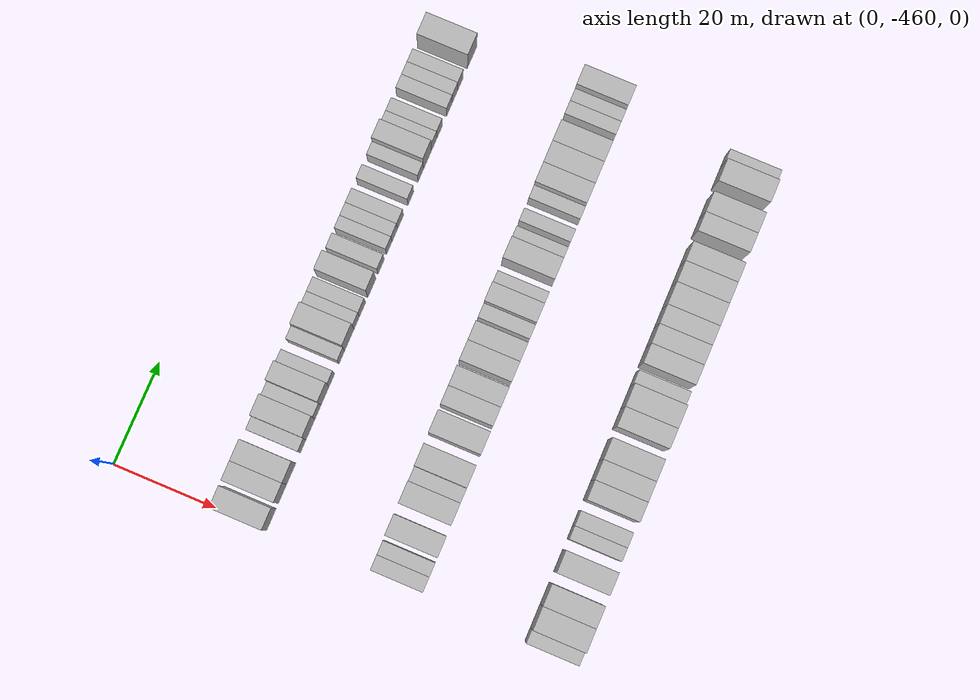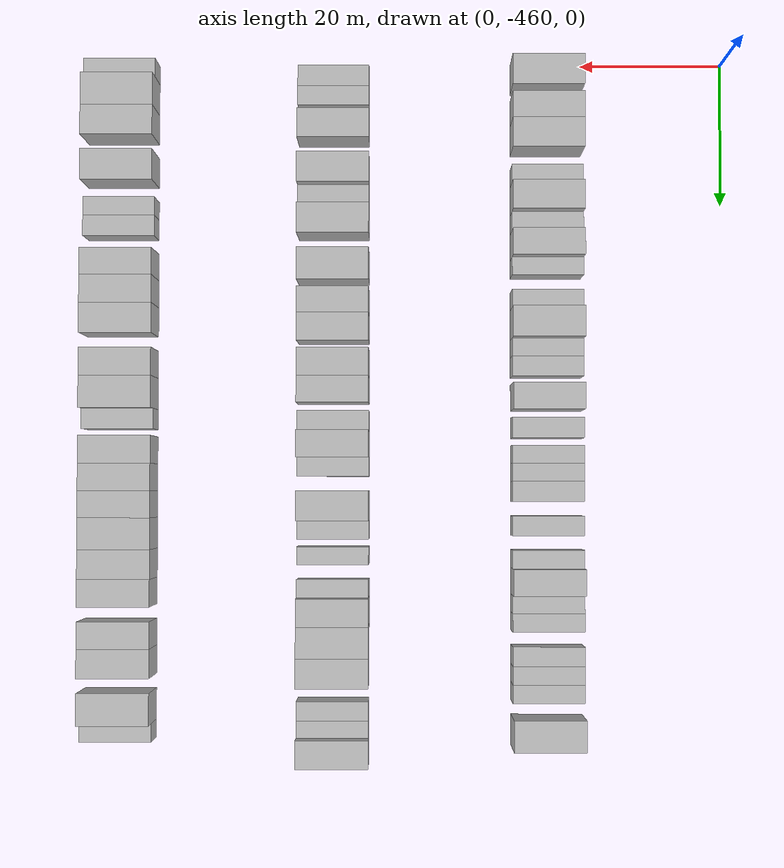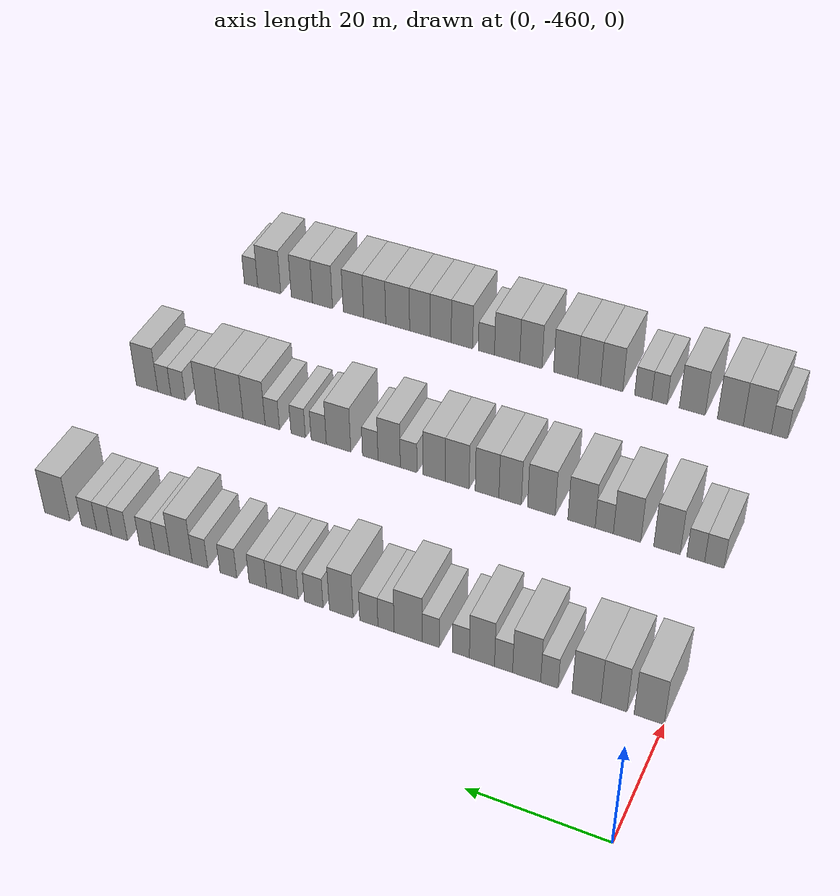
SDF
<sdf version="1.6">
 <world name="default">
  <model name="building_1">
   <static>1</static>
   <pose>25.0000 -457.9038 0 0.000000 0.000000 0.000000</pose>
   <link name="link">
    <pose>0 0 4.50 0 0 0</pose>
    <collision name="collision"><geometry><box><size>10.0000 4.1924 9.0000</size></box></geometry></collision>
    <visual name="visual">
     <cast_shadows>0</cast_shadows>
     <geometry><box><size>10.0000 4.1924 9.0000</size></box></geometry>
     <material>
      <script>
       <uri>model://HANNAS_wall/materials/scripts</uri>
       <uri>model://HANNAS_wall/materials/textures</uri>
       <name>vrc/HANNAS_wall</name>
      </script>
     </material>
    </visual>
   </link>
  </model>
  <model name="building_2">
   <static>1</static>
   <pose>25.0000 -452.9609 0 0.000000 0.000000 0.000000</pose>
   <link name="link">
    <pose>0 0 4.50 0 0 0</pose>
    <collision name="collision"><geometry><box><size>10.0000 3.6936 9.0000</size></box></geometry></collision>
    <visual name="visual">
     <cast_shadows>0</cast_shadows>
     <geometry><box><size>10.0000 3.6936 9.0000</size></box></geometry>
     <material>
      <script>
       <uri>model://HANNAS_wall/materials/scripts</uri>
       <uri>model://HANNAS_wall/materials/textures</uri>
       <name>vrc/HANNAS_wall</name>
      </script>
     </material>
    </visual>
   </link>
  </model>
  <model name="building_3">
   <static>1</static>
   <pose>25.0000 -449.0619 0 0.000000 0.000000 0.000000</pose>
   <link name="link">
    <pose>0 0 4.50 0 0 0</pose>
    <collision name="collision"><geometry><box><size>10.0000 4.1043 9.0000</size></box></geometry></collision>
    <visual name="visual">
     <cast_shadows>0</cast_shadows>
     <geometry><box><size>10.0000 4.1043 9.0000</size></box></geometry>
     <material>
      <script>
       <uri>model://HANNAS_wall/materials/scripts</uri>
       <uri>model://HANNAS_wall/materials/textures</uri>
       <name>vrc/HANNAS_wall</name>
      </script>
     </material>
    </visual>
   </link>
  </model>
  <model name="building_4">
   <static>1</static>
   <pose>25.0000 -443.7452 0 0.000000 0.000000 0.000000</pose>
   <link name="link">
    <pose>0 0 3.00 0 0 0</pose>
    <collision name="collision"><geometry><box><size>10.0000 2.5291 6.0000</size></box></geometry></collision>
    <visual name="visual">
     <cast_shadows>0</cast_shadows>
     <geometry><box><size>10.0000 2.5291 6.0000</size></box></geometry>
     <material>
      <script>
       <uri>model://HANNAS_wall/materials/scripts</uri>
       <uri>model://HANNAS_wall/materials/textures</uri>
       <name>vrc/HANNAS_wall</name>
      </script>
     </material>
    </visual>
   </link>
  </model>
  <model name="building_5">
   <static>1</static>
   <pose>25.0000 -440.4347 0 0.000000 0.000000 0.000000</pose>
   <link name="link">
    <pose>0 0 4.50 0 0 0</pose>
    <collision name="collision"><geometry><box><size>10.0000 4.0920 9.0000</size></box></geometry></collision>
    <visual name="visual">
     <cast_shadows>0</cast_shadows>
     <geometry><box><size>10.0000 4.0920 9.0000</size></box></geometry>
     <material>
      <script>
       <uri>model://HANNAS_wall/materials/scripts</uri>
       <uri>model://HANNAS_wall/materials/textures</uri>
       <name>vrc/HANNAS_wall</name>
      </script>
     </material>
    </visual>
   </link>
  </model>
  <model name="building_6">
   <static>1</static>
   <pose>25.0000 -437.0608 0 0.000000 0.000000 0.000000</pose>
   <link name="link">
    <pose>0 0 3.00 0 0 0</pose>
    <collision name="collision"><geometry><box><size>10.0000 2.6559 6.0000</size></box></geometry></collision>
    <visual name="visual">
     <cast_shadows>0</cast_shadows>
     <geometry><box><size>10.0000 2.6559 6.0000</size></box></geometry>
     <material>
      <script>
       <uri>model://HANNAS_wall/materials/scripts</uri>
       <uri>model://HANNAS_wall/materials/textures</uri>
       <name>vrc/HANNAS_wall</name>
      </script>
     </material>
    </visual>
   </link>
  </model>
  <model name="building_7">
   <static>1</static>
   <pose>25.0000 -433.8750 0 0.000000 0.000000 0.000000</pose>
   <link name="link">
    <pose>0 0 4.50 0 0 0</pose>
    <collision name="collision"><geometry><box><size>10.0000 3.7156 9.0000</size></box></geometry></collision>
    <visual name="visual">
     <cast_shadows>0</cast_shadows>
     <geometry><box><size>10.0000 3.7156 9.0000</size></box></geometry>
     <material>
      <script>
       <uri>model://HANNAS_wall/materials/scripts</uri>
       <uri>model://HANNAS_wall/materials/textures</uri>
       <name>vrc/HANNAS_wall</name>
      </script>
     </material>
    </visual>
   </link>
  </model>
  <model name="building_8">
   <static>1</static>
   <pose>25.0000 -430.7578 0 0.000000 0.000000 0.000000</pose>
   <link name="link">
    <pose>0 0 3.00 0 0 0</pose>
    <collision name="collision"><geometry><box><size>10.0000 2.5190 6.0000</size></box></geometry></collision>
    <visual name="visual">
     <cast_shadows>0</cast_shadows>
     <geometry><box><size>10.0000 2.5190 6.0000</size></box></geometry>
     <material>
      <script>
       <uri>model://HANNAS_wall/materials/scripts</uri>
       <uri>model://HANNAS_wall/materials/textures</uri>
       <name>vrc/HANNAS_wall</name>
      </script>
     </material>
    </visual>
   </link>
  </model>
  <model name="building_9">
   <static>1</static>
   <pose>25.0000 -426.2281 0 0.000000 0.000000 0.000000</pose>
   <link name="link">
    <pose>0 0 3.00 0 0 0</pose>
    <collision name="collision"><geometry><box><size>10.0000 2.5404 6.0000</size></box></geometry></collision>
    <visual name="visual">
     <cast_shadows>0</cast_shadows>
     <geometry><box><size>10.0000 2.5404 6.0000</size></box></geometry>
     <material>
      <script>
       <uri>model://HANNAS_wall/materials/scripts</uri>
       <uri>model://HANNAS_wall/materials/textures</uri>
       <name>vrc/HANNAS_wall</name>
      </script>
     </material>
    </visual>
   </link>
  </model>
  <model name="building_10">
   <static>1</static>
   <pose>25.0000 -422.8265 0 0.000000 0.000000 0.000000</pose>
   <link name="link">
    <pose>0 0 4.50 0 0 0</pose>
    <collision name="collision"><geometry><box><size>10.0000 4.2628 9.0000</size></box></geometry></collision>
    <visual name="visual">
     <cast_shadows>0</cast_shadows>
     <geometry><box><size>10.0000 4.2628 9.0000</size></box></geometry>
     <material>
      <script>
       <uri>model://HANNAS_wall/materials/scripts</uri>
       <uri>model://HANNAS_wall/materials/textures</uri>
       <name>vrc/HANNAS_wall</name>
      </script>
     </material>
    </visual>
   </link>
  </model>
  <model name="building_11">
   <static>1</static>
   <pose>25.0000 -419.4430 0 0.000000 0.000000 0.000000</pose>
   <link name="link">
    <pose>0 0 3.00 0 0 0</pose>
    <collision name="collision"><geometry><box><size>10.0000 2.5042 6.0000</size></box></geometry></collision>
    <visual name="visual">
     <cast_shadows>0</cast_shadows>
     <geometry><box><size>10.0000 2.5042 6.0000</size></box></geometry>
     <material>
      <script>
       <uri>model://HANNAS_wall/materials/scripts</uri>
       <uri>model://HANNAS_wall/materials/textures</uri>
       <name>vrc/HANNAS_wall</name>
      </script>
     </material>
    </visual>
   </link>
  </model>
  <model name="building_12">
   <static>1</static>
   <pose>25.0000 -416.7817 0 0.000000 0.000000 0.000000</pose>
   <link name="link">
    <pose>0 0 3.00 0 0 0</pose>
    <collision name="collision"><geometry><box><size>10.0000 2.8184 6.0000</size></box></geometry></collision>
    <visual name="visual">
     <cast_shadows>0</cast_shadows>
     <geometry><box><size>10.0000 2.8184 6.0000</size></box></geometry>
     <material>
      <script>
       <uri>model://HANNAS_wall/materials/scripts</uri>
       <uri>model://HANNAS_wall/materials/textures</uri>
       <name>vrc/HANNAS_wall</name>
      </script>
     </material>
    </visual>
   </link>
  </model>
  <model name="building_13">
   <static>1</static>
   <pose>25.0000 -412.5210 0 0.000000 0.000000 0.000000</pose>
   <link name="link">
    <pose>0 0 4.50 0 0 0</pose>
    <collision name="collision"><geometry><box><size>10.0000 3.7030 9.0000</size></box></geometry></collision>
    <visual name="visual">
     <cast_shadows>0</cast_shadows>
     <geometry><box><size>10.0000 3.7030 9.0000</size></box></geometry>
     <material>
      <script>
       <uri>model://HANNAS_wall/materials/scripts</uri>
       <uri>model://HANNAS_wall/materials/textures</uri>
       <name>vrc/HANNAS_wall</name>
      </script>
     </material>
    </visual>
   </link>
  </model>
  <model name="building_14">
   <static>1</static>
   <pose>25.0000 -408.2106 0 0.000000 0.000000 0.000000</pose>
   <link name="link">
    <pose>0 0 3.00 0 0 0</pose>
    <collision name="collision"><geometry><box><size>10.0000 2.9179 6.0000</size></box></geometry></collision>
    <visual name="visual">
     <cast_shadows>0</cast_shadows>
     <geometry><box><size>10.0000 2.9179 6.0000</size></box></geometry>
     <material>
      <script>
       <uri>model://HANNAS_wall/materials/scripts</uri>
       <uri>model://HANNAS_wall/materials/textures</uri>
       <name>vrc/HANNAS_wall</name>
      </script>
     </material>
    </visual>
   </link>
  </model>
  <model name="building_15">
   <static>1</static>
   <pose>25.0000 -404.5162 0 0.000000 0.000000 0.000000</pose>
   <link name="link">
    <pose>0 0 3.00 0 0 0</pose>
    <collision name="collision"><geometry><box><size>10.0000 2.4708 6.0000</size></box></geometry></collision>
    <visual name="visual">
     <cast_shadows>0</cast_shadows>
     <geometry><box><size>10.0000 2.4708 6.0000</size></box></geometry>
     <material>
      <script>
       <uri>model://HANNAS_wall/materials/scripts</uri>
       <uri>model://HANNAS_wall/materials/textures</uri>
       <name>vrc/HANNAS_wall</name>
      </script>
     </material>
    </visual>
   </link>
  </model>
  <model name="building_16">
   <static>1</static>
   <pose>25.0000 -402.0002 0 0.000000 0.000000 0.000000</pose>
   <link name="link">
    <pose>0 0 3.00 0 0 0</pose>
    <collision name="collision"><geometry><box><size>10.0000 2.5612 6.0000</size></box></geometry></collision>
    <visual name="visual">
     <cast_shadows>0</cast_shadows>
     <geometry><box><size>10.0000 2.5612 6.0000</size></box></geometry>
     <material>
      <script>
       <uri>model://HANNAS_wall/materials/scripts</uri>
       <uri>model://HANNAS_wall/materials/textures</uri>
       <name>vrc/HANNAS_wall</name>
      </script>
     </material>
    </visual>
   </link>
  </model>
  <model name="building_17">
   <static>1</static>
   <pose>25.0000 -399.3061 0 0.000000 0.000000 0.000000</pose>
   <link name="link">
    <pose>0 0 3.00 0 0 0</pose>
    <collision name="collision"><geometry><box><size>10.0000 2.8269 6.0000</size></box></geometry></collision>
    <visual name="visual">
     <cast_shadows>0</cast_shadows>
     <geometry><box><size>10.0000 2.8269 6.0000</size></box></geometry>
     <material>
      <script>
       <uri>model://HANNAS_wall/materials/scripts</uri>
       <uri>model://HANNAS_wall/materials/textures</uri>
       <name>vrc/HANNAS_wall</name>
      </script>
     </material>
    </visual>
   </link>
  </model>
  <model name="building_18">
   <static>1</static>
   <pose>25.0000 -394.5300 0 0.000000 0.000000 0.000000</pose>
   <link name="link">
    <pose>0 0 3.00 0 0 0</pose>
    <collision name="collision"><geometry><box><size>10.0000 2.7254 6.0000</size></box></geometry></collision>
    <visual name="visual">
     <cast_shadows>0</cast_shadows>
     <geometry><box><size>10.0000 2.7254 6.0000</size></box></geometry>
     <material>
      <script>
       <uri>model://HANNAS_wall/materials/scripts</uri>
       <uri>model://HANNAS_wall/materials/textures</uri>
       <name>vrc/HANNAS_wall</name>
      </script>
     </material>
    </visual>
   </link>
  </model>
  <model name="building_19">
   <static>1</static>
   <pose>25.0000 -389.8866 0 0.000000 0.000000 0.000000</pose>
   <link name="link">
    <pose>0 0 3.00 0 0 0</pose>
    <collision name="collision"><geometry><box><size>10.0000 2.5613 6.0000</size></box></geometry></collision>
    <visual name="visual">
     <cast_shadows>0</cast_shadows>
     <geometry><box><size>10.0000 2.5613 6.0000</size></box></geometry>
     <material>
      <script>
       <uri>model://HANNAS_wall/materials/scripts</uri>
       <uri>model://HANNAS_wall/materials/textures</uri>
       <name>vrc/HANNAS_wall</name>
      </script>
     </material>
    </visual>
   </link>
  </model>
  <model name="building_20">
   <static>1</static>
   <pose>25.0000 -386.7534 0 0.000000 0.000000 0.000000</pose>
   <link name="link">
    <pose>0 0 4.50 0 0 0</pose>
    <collision name="collision"><geometry><box><size>10.0000 3.7051 9.0000</size></box></geometry></collision>
    <visual name="visual">
     <cast_shadows>0</cast_shadows>
     <geometry><box><size>10.0000 3.7051 9.0000</size></box></geometry>
     <material>
      <script>
       <uri>model://HANNAS_wall/materials/scripts</uri>
       <uri>model://HANNAS_wall/materials/textures</uri>
       <name>vrc/HANNAS_wall</name>
      </script>
     </material>
    </visual>
   </link>
  </model>
  <model name="building_21">
   <static>1</static>
   <pose>25.0000 -383.6446 0 0.000000 0.000000 0.000000</pose>
   <link name="link">
    <pose>0 0 3.00 0 0 0</pose>
    <collision name="collision"><geometry><box><size>10.0000 2.5125 6.0000</size></box></geometry></collision>
    <visual name="visual">
     <cast_shadows>0</cast_shadows>
     <geometry><box><size>10.0000 2.5125 6.0000</size></box></geometry>
     <material>
      <script>
       <uri>model://HANNAS_wall/materials/scripts</uri>
       <uri>model://HANNAS_wall/materials/textures</uri>
       <name>vrc/HANNAS_wall</name>
      </script>
     </material>
    </visual>
   </link>
  </model>
  <model name="building_22">
   <static>1</static>
   <pose>25.0000 -381.0947 0 0.000000 0.000000 0.000000</pose>
   <link name="link">
    <pose>0 0 3.00 0 0 0</pose>
    <collision name="collision"><geometry><box><size>10.0000 2.5872 6.0000</size></box></geometry></collision>
    <visual name="visual">
     <cast_shadows>0</cast_shadows>
     <geometry><box><size>10.0000 2.5872 6.0000</size></box></geometry>
     <material>
      <script>
       <uri>model://HANNAS_wall/materials/scripts</uri>
       <uri>model://HANNAS_wall/materials/textures</uri>
       <name>vrc/HANNAS_wall</name>
      </script>
     </material>
    </visual>
   </link>
  </model>
  <model name="building_23">
   <static>1</static>
   <pose>25.0000 -376.4529 0 0.000000 0.000000 0.000000</pose>
   <link name="link">
    <pose>0 0 3.00 0 0 0</pose>
    <collision name="collision"><geometry><box><size>10.0000 2.6964 6.0000</size></box></geometry></collision>
    <visual name="visual">
     <cast_shadows>0</cast_shadows>
     <geometry><box><size>10.0000 2.6964 6.0000</size></box></geometry>
     <material>
      <script>
       <uri>model://HANNAS_wall/materials/scripts</uri>
       <uri>model://HANNAS_wall/materials/textures</uri>
       <name>vrc/HANNAS_wall</name>
      </script>
     </material>
    </visual>
   </link>
  </model>
  <model name="building_24">
   <static>1</static>
   <pose>25.0000 -373.8262 0 0.000000 0.000000 0.000000</pose>
   <link name="link">
    <pose>0 0 3.00 0 0 0</pose>
    <collision name="collision"><geometry><box><size>10.0000 2.5570 6.0000</size></box></geometry></collision>
    <visual name="visual">
     <cast_shadows>0</cast_shadows>
     <geometry><box><size>10.0000 2.5570 6.0000</size></box></geometry>
     <material>
      <script>
       <uri>model://HANNAS_wall/materials/scripts</uri>
       <uri>model://HANNAS_wall/materials/textures</uri>
       <name>vrc/HANNAS_wall</name>
      </script>
     </material>
    </visual>
   </link>
  </model>
  <model name="building_25">
   <static>1</static>
   <pose>25.0000 -371.2530 0 0.000000 0.000000 0.000000</pose>
   <link name="link">
    <pose>0 0 3.00 0 0 0</pose>
    <collision name="collision"><geometry><box><size>10.0000 2.5894 6.0000</size></box></geometry></collision>
    <visual name="visual">
     <cast_shadows>0</cast_shadows>
     <geometry><box><size>10.0000 2.5894 6.0000</size></box></geometry>
     <material>
      <script>
       <uri>model://HANNAS_wall/materials/scripts</uri>
       <uri>model://HANNAS_wall/materials/textures</uri>
       <name>vrc/HANNAS_wall</name>
      </script>
     </material>
    </visual>
   </link>
  </model>
  <model name="building_26">
   <static>1</static>
   <pose>25.0000 -365.7674 0 0.000000 0.000000 0.000000</pose>
   <link name="link">
    <pose>0 0 4.50 0 0 0</pose>
    <collision name="collision"><geometry><box><size>10.0000 4.3818 9.0000</size></box></geometry></collision>
    <visual name="visual">
     <cast_shadows>0</cast_shadows>
     <geometry><box><size>10.0000 4.3818 9.0000</size></box></geometry>
     <material>
      <script>
       <uri>model://HANNAS_wall/materials/scripts</uri>
       <uri>model://HANNAS_wall/materials/textures</uri>
       <name>vrc/HANNAS_wall</name>
      </script>
     </material>
    </visual>
   </link>
  </model>
  <model name="building_234">
   <static>1</static>
   <pose>55.0000 -457.5480 0 0.000000 0.000000 0.000000</pose>
   <link name="link">
    <pose>0 0 3.00 0 0 0</pose>
    <collision name="collision"><geometry><box><size>10.0000 2.9040 6.0000</size></box></geometry></collision>
    <visual name="visual">
     <cast_shadows>0</cast_shadows>
     <geometry><box><size>10.0000 2.9040 6.0000</size></box></geometry>
     <material>
      <script>
       <uri>model://HANNAS_wall/materials/scripts</uri>
       <uri>model://HANNAS_wall/materials/textures</uri>
       <name>vrc/HANNAS_wall</name>
      </script>
     </material>
    </visual>
   </link>
  </model>
  <model name="building_235">
   <static>1</static>
   <pose>55.0000 -454.7505 0 0.000000 0.000000 0.000000</pose>
   <link name="link">
    <pose>0 0 3.00 0 0 0</pose>
    <collision name="collision"><geometry><box><size>10.0000 2.6909 6.0000</size></box></geometry></collision>
    <visual name="visual">
     <cast_shadows>0</cast_shadows>
     <geometry><box><size>10.0000 2.6909 6.0000</size></box></geometry>
     <material>
      <script>
       <uri>model://HANNAS_wall/materials/scripts</uri>
       <uri>model://HANNAS_wall/materials/textures</uri>
       <name>vrc/HANNAS_wall</name>
      </script>
     </material>
    </visual>
   </link>
  </model>
  <model name="building_236">
   <static>1</static>
   <pose>55.0000 -450.3917 0 0.000000 0.000000 0.000000</pose>
   <link name="link">
    <pose>0 0 4.50 0 0 0</pose>
    <collision name="collision"><geometry><box><size>10.0000 4.0267 9.0000</size></box></geometry></collision>
    <visual name="visual">
     <cast_shadows>0</cast_shadows>
     <geometry><box><size>10.0000 4.0267 9.0000</size></box></geometry>
     <material>
      <script>
       <uri>model://HANNAS_wall/materials/scripts</uri>
       <uri>model://HANNAS_wall/materials/textures</uri>
       <name>vrc/HANNAS_wall</name>
      </script>
     </material>
    </visual>
   </link>
  </model>
  <model name="building_237">
   <static>1</static>
   <pose>55.0000 -444.2671 0 0.000000 0.000000 0.000000</pose>
   <link name="link">
    <pose>0 0 4.50 0 0 0</pose>
    <collision name="collision"><geometry><box><size>10.0000 4.2225 9.0000</size></box></geometry></collision>
    <visual name="visual">
     <cast_shadows>0</cast_shadows>
     <geometry><box><size>10.0000 4.2225 9.0000</size></box></geometry>
     <material>
      <script>
       <uri>model://HANNAS_wall/materials/scripts</uri>
       <uri>model://HANNAS_wall/materials/textures</uri>
       <name>vrc/HANNAS_wall</name>
      </script>
     </material>
    </visual>
   </link>
  </model>
  <model name="building_238">
   <static>1</static>
   <pose>55.0000 -440.7392 0 0.000000 0.000000 0.000000</pose>
   <link name="link">
    <pose>0 0 3.00 0 0 0</pose>
    <collision name="collision"><geometry><box><size>10.0000 2.8331 6.0000</size></box></geometry></collision>
    <visual name="visual">
     <cast_shadows>0</cast_shadows>
     <geometry><box><size>10.0000 2.8331 6.0000</size></box></geometry>
     <material>
      <script>
       <uri>model://HANNAS_wall/materials/scripts</uri>
       <uri>model://HANNAS_wall/materials/textures</uri>
       <name>vrc/HANNAS_wall</name>
      </script>
     </material>
    </visual>
   </link>
  </model>
  <model name="building_239">
   <static>1</static>
   <pose>55.0000 -437.1790 0 0.000000 0.000000 0.000000</pose>
   <link name="link">
    <pose>0 0 4.50 0 0 0</pose>
    <collision name="collision"><geometry><box><size>10.0000 4.2874 9.0000</size></box></geometry></collision>
    <visual name="visual">
     <cast_shadows>0</cast_shadows>
     <geometry><box><size>10.0000 4.2874 9.0000</size></box></geometry>
     <material>
      <script>
       <uri>model://HANNAS_wall/materials/scripts</uri>
       <uri>model://HANNAS_wall/materials/textures</uri>
       <name>vrc/HANNAS_wall</name>
      </script>
     </material>
    </visual>
   </link>
  </model>
  <model name="building_240">
   <static>1</static>
   <pose>55.0000 -430.8292 0 0.000000 0.000000 0.000000</pose>
   <link name="link">
    <pose>0 0 4.50 0 0 0</pose>
    <collision name="collision"><geometry><box><size>10.0000 4.4122 9.0000</size></box></geometry></collision>
    <visual name="visual">
     <cast_shadows>0</cast_shadows>
     <geometry><box><size>10.0000 4.4122 9.0000</size></box></geometry>
     <material>
      <script>
       <uri>model://HANNAS_wall/materials/scripts</uri>
       <uri>model://HANNAS_wall/materials/textures</uri>
       <name>vrc/HANNAS_wall</name>
      </script>
     </material>
    </visual>
   </link>
  </model>
  <model name="building_241">
   <static>1</static>
   <pose>55.0000 -425.8202 0 0.000000 0.000000 0.000000</pose>
   <link name="link">
    <pose>0 0 4.50 0 0 0</pose>
    <collision name="collision"><geometry><box><size>10.0000 3.6058 9.0000</size></box></geometry></collision>
    <visual name="visual">
     <cast_shadows>0</cast_shadows>
     <geometry><box><size>10.0000 3.6058 9.0000</size></box></geometry>
     <material>
      <script>
       <uri>model://HANNAS_wall/materials/scripts</uri>
       <uri>model://HANNAS_wall/materials/textures</uri>
       <name>vrc/HANNAS_wall</name>
      </script>
     </material>
    </visual>
   </link>
  </model>
  <model name="building_242">
   <static>1</static>
   <pose>55.0000 -422.0971 0 0.000000 0.000000 0.000000</pose>
   <link name="link">
    <pose>0 0 4.50 0 0 0</pose>
    <collision name="collision"><geometry><box><size>10.0000 3.8404 9.0000</size></box></geometry></collision>
    <visual name="visual">
     <cast_shadows>0</cast_shadows>
     <geometry><box><size>10.0000 3.8404 9.0000</size></box></geometry>
     <material>
      <script>
       <uri>model://HANNAS_wall/materials/scripts</uri>
       <uri>model://HANNAS_wall/materials/textures</uri>
       <name>vrc/HANNAS_wall</name>
      </script>
     </material>
    </visual>
   </link>
  </model>
  <model name="building_243">
   <static>1</static>
   <pose>55.0000 -417.2230 0 0.000000 0.000000 0.000000</pose>
   <link name="link">
    <pose>0 0 4.50 0 0 0</pose>
    <collision name="collision"><geometry><box><size>10.0000 3.9077 9.0000</size></box></geometry></collision>
    <visual name="visual">
     <cast_shadows>0</cast_shadows>
     <geometry><box><size>10.0000 3.9077 9.0000</size></box></geometry>
     <material>
      <script>
       <uri>model://HANNAS_wall/materials/scripts</uri>
       <uri>model://HANNAS_wall/materials/textures</uri>
       <name>vrc/HANNAS_wall</name>
      </script>
     </material>
    </visual>
   </link>
  </model>
  <model name="building_244">
   <static>1</static>
   <pose>55.0000 -413.4263 0 0.000000 0.000000 0.000000</pose>
   <link name="link">
    <pose>0 0 4.50 0 0 0</pose>
    <collision name="collision"><geometry><box><size>10.0000 3.6858 9.0000</size></box></geometry></collision>
    <visual name="visual">
     <cast_shadows>0</cast_shadows>
     <geometry><box><size>10.0000 3.6858 9.0000</size></box></geometry>
     <material>
      <script>
       <uri>model://HANNAS_wall/materials/scripts</uri>
       <uri>model://HANNAS_wall/materials/textures</uri>
       <name>vrc/HANNAS_wall</name>
      </script>
     </material>
    </visual>
   </link>
  </model>
  <model name="building_245">
   <static>1</static>
   <pose>55.0000 -409.1894 0 0.000000 0.000000 0.000000</pose>
   <link name="link">
    <pose>0 0 3.00 0 0 0</pose>
    <collision name="collision"><geometry><box><size>10.0000 2.7880 6.0000</size></box></geometry></collision>
    <visual name="visual">
     <cast_shadows>0</cast_shadows>
     <geometry><box><size>10.0000 2.7880 6.0000</size></box></geometry>
     <material>
      <script>
       <uri>model://HANNAS_wall/materials/scripts</uri>
       <uri>model://HANNAS_wall/materials/textures</uri>
       <name>vrc/HANNAS_wall</name>
      </script>
     </material>
    </visual>
   </link>
  </model>
  <model name="building_246">
   <static>1</static>
   <pose>55.0000 -405.9218 0 0.000000 0.000000 0.000000</pose>
   <link name="link">
    <pose>0 0 4.50 0 0 0</pose>
    <collision name="collision"><geometry><box><size>10.0000 3.7471 9.0000</size></box></geometry></collision>
    <visual name="visual">
     <cast_shadows>0</cast_shadows>
     <geometry><box><size>10.0000 3.7471 9.0000</size></box></geometry>
     <material>
      <script>
       <uri>model://HANNAS_wall/materials/scripts</uri>
       <uri>model://HANNAS_wall/materials/textures</uri>
       <name>vrc/HANNAS_wall</name>
      </script>
     </material>
    </visual>
   </link>
  </model>
  <model name="building_247">
   <static>1</static>
   <pose>55.0000 -402.7331 0 0.000000 0.000000 0.000000</pose>
   <link name="link">
    <pose>0 0 3.00 0 0 0</pose>
    <collision name="collision"><geometry><box><size>10.0000 2.6303 6.0000</size></box></geometry></collision>
    <visual name="visual">
     <cast_shadows>0</cast_shadows>
     <geometry><box><size>10.0000 2.6303 6.0000</size></box></geometry>
     <material>
      <script>
       <uri>model://HANNAS_wall/materials/scripts</uri>
       <uri>model://HANNAS_wall/materials/textures</uri>
       <name>vrc/HANNAS_wall</name>
      </script>
     </material>
    </visual>
   </link>
  </model>
  <model name="building_248">
   <static>1</static>
   <pose>55.0000 -397.3240 0 0.000000 0.000000 0.000000</pose>
   <link name="link">
    <pose>0 0 4.50 0 0 0</pose>
    <collision name="collision"><geometry><box><size>10.0000 4.1879 9.0000</size></box></geometry></collision>
    <visual name="visual">
     <cast_shadows>0</cast_shadows>
     <geometry><box><size>10.0000 4.1879 9.0000</size></box></geometry>
     <material>
      <script>
       <uri>model://HANNAS_wall/materials/scripts</uri>
       <uri>model://HANNAS_wall/materials/textures</uri>
       <name>vrc/HANNAS_wall</name>
      </script>
     </material>
    </visual>
   </link>
  </model>
  <model name="building_249">
   <static>1</static>
   <pose>55.0000 -393.9203 0 0.000000 0.000000 0.000000</pose>
   <link name="link">
    <pose>0 0 3.00 0 0 0</pose>
    <collision name="collision"><geometry><box><size>10.0000 2.6193 6.0000</size></box></geometry></collision>
    <visual name="visual">
     <cast_shadows>0</cast_shadows>
     <geometry><box><size>10.0000 2.6193 6.0000</size></box></geometry>
     <material>
      <script>
       <uri>model://HANNAS_wall/materials/scripts</uri>
       <uri>model://HANNAS_wall/materials/textures</uri>
       <name>vrc/HANNAS_wall</name>
      </script>
     </material>
    </visual>
   </link>
  </model>
  <model name="building_250">
   <static>1</static>
   <pose>55.0000 -390.3541 0 0.000000 0.000000 0.000000</pose>
   <link name="link">
    <pose>0 0 3.00 0 0 0</pose>
    <collision name="collision"><geometry><box><size>10.0000 2.5131 6.0000</size></box></geometry></collision>
    <visual name="visual">
     <cast_shadows>0</cast_shadows>
     <geometry><box><size>10.0000 2.5131 6.0000</size></box></geometry>
     <material>
      <script>
       <uri>model://HANNAS_wall/materials/scripts</uri>
       <uri>model://HANNAS_wall/materials/textures</uri>
       <name>vrc/HANNAS_wall</name>
      </script>
     </material>
    </visual>
   </link>
  </model>
  <model name="building_251">
   <static>1</static>
   <pose>55.0000 -385.8284 0 0.000000 0.000000 0.000000</pose>
   <link name="link">
    <pose>0 0 3.00 0 0 0</pose>
    <collision name="collision"><geometry><box><size>10.0000 2.5384 6.0000</size></box></geometry></collision>
    <visual name="visual">
     <cast_shadows>0</cast_shadows>
     <geometry><box><size>10.0000 2.5384 6.0000</size></box></geometry>
     <material>
      <script>
       <uri>model://HANNAS_wall/materials/scripts</uri>
       <uri>model://HANNAS_wall/materials/textures</uri>
       <name>vrc/HANNAS_wall</name>
      </script>
     </material>
    </visual>
   </link>
  </model>
  <model name="building_252">
   <static>1</static>
   <pose>55.0000 -382.6064 0 0.000000 0.000000 0.000000</pose>
   <link name="link">
    <pose>0 0 4.50 0 0 0</pose>
    <collision name="collision"><geometry><box><size>10.0000 3.9055 9.0000</size></box></geometry></collision>
    <visual name="visual">
     <cast_shadows>0</cast_shadows>
     <geometry><box><size>10.0000 3.9055 9.0000</size></box></geometry>
     <material>
      <script>
       <uri>model://HANNAS_wall/materials/scripts</uri>
       <uri>model://HANNAS_wall/materials/textures</uri>
       <name>vrc/HANNAS_wall</name>
      </script>
     </material>
    </visual>
   </link>
  </model>
  <model name="building_253">
   <static>1</static>
   <pose>55.0000 -378.5290 0 0.000000 0.000000 0.000000</pose>
   <link name="link">
    <pose>0 0 4.50 0 0 0</pose>
    <collision name="collision"><geometry><box><size>10.0000 4.2493 9.0000</size></box></geometry></collision>
    <visual name="visual">
     <cast_shadows>0</cast_shadows>
     <geometry><box><size>10.0000 4.2493 9.0000</size></box></geometry>
     <material>
      <script>
       <uri>model://HANNAS_wall/materials/scripts</uri>
       <uri>model://HANNAS_wall/materials/textures</uri>
       <name>vrc/HANNAS_wall</name>
      </script>
     </material>
    </visual>
   </link>
  </model>
  <model name="building_254">
   <static>1</static>
   <pose>55.0000 -374.3461 0 0.000000 0.000000 0.000000</pose>
   <link name="link">
    <pose>0 0 4.50 0 0 0</pose>
    <collision name="collision"><geometry><box><size>10.0000 4.1165 9.0000</size></box></geometry></collision>
    <visual name="visual">
     <cast_shadows>0</cast_shadows>
     <geometry><box><size>10.0000 4.1165 9.0000</size></box></geometry>
     <material>
      <script>
       <uri>model://HANNAS_wall/materials/scripts</uri>
       <uri>model://HANNAS_wall/materials/textures</uri>
       <name>vrc/HANNAS_wall</name>
      </script>
     </material>
    </visual>
   </link>
  </model>
  <model name="building_255">
   <static>1</static>
   <pose>55.0000 -368.9748 0 0.000000 0.000000 0.000000</pose>
   <link name="link">
    <pose>0 0 3.00 0 0 0</pose>
    <collision name="collision"><geometry><box><size>10.0000 2.6261 6.0000</size></box></geometry></collision>
    <visual name="visual">
     <cast_shadows>0</cast_shadows>
     <geometry><box><size>10.0000 2.6261 6.0000</size></box></geometry>
     <material>
      <script>
       <uri>model://HANNAS_wall/materials/scripts</uri>
       <uri>model://HANNAS_wall/materials/textures</uri>
       <name>vrc/HANNAS_wall</name>
      </script>
     </material>
    </visual>
   </link>
  </model>
  <model name="building_256">
   <static>1</static>
   <pose>55.0000 -366.4536 0 0.000000 0.000000 0.000000</pose>
   <link name="link">
    <pose>0 0 3.00 0 0 0</pose>
    <collision name="collision"><geometry><box><size>10.0000 2.4163 6.0000</size></box></geometry></collision>
    <visual name="visual">
     <cast_shadows>0</cast_shadows>
     <geometry><box><size>10.0000 2.4163 6.0000</size></box></geometry>
     <material>
      <script>
       <uri>model://HANNAS_wall/materials/scripts</uri>
       <uri>model://HANNAS_wall/materials/textures</uri>
       <name>vrc/HANNAS_wall</name>
      </script>
     </material>
    </visual>
   </link>
  </model>
  <model name="building_257">
   <static>1</static>
   <pose>55.0000 -363.2797 0 0.000000 0.000000 0.000000</pose>
   <link name="link">
    <pose>0 0 4.50 0 0 0</pose>
    <collision name="collision"><geometry><box><size>10.0000 3.9314 9.0000</size></box></geometry></collision>
    <visual name="visual">
     <cast_shadows>0</cast_shadows>
     <geometry><box><size>10.0000 3.9314 9.0000</size></box></geometry>
     <material>
      <script>
       <uri>model://HANNAS_wall/materials/scripts</uri>
       <uri>model://HANNAS_wall/materials/textures</uri>
       <name>vrc/HANNAS_wall</name>
      </script>
     </material>
    </visual>
   </link>
  </model>
  <model name="building_458">
   <static>1</static>
   <pose>85.0000 -458.6913 0 0.000000 0.000000 0.000000</pose>
   <link name="link">
    <pose>0 0 3.00 0 0 0</pose>
    <collision name="collision"><geometry><box><size>10.0000 2.6175 6.0000</size></box></geometry></collision>
    <visual name="visual">
     <cast_shadows>0</cast_shadows>
     <geometry><box><size>10.0000 2.6175 6.0000</size></box></geometry>
     <material>
      <script>
       <uri>model://HANNAS_wall/materials/scripts</uri>
       <uri>model://HANNAS_wall/materials/textures</uri>
       <name>vrc/HANNAS_wall</name>
      </script>
     </material>
    </visual>
   </link>
  </model>
  <model name="building_459">
   <static>1</static>
   <pose>85.0000 -455.1394 0 0.000000 0.000000 0.000000</pose>
   <link name="link">
    <pose>0 0 4.50 0 0 0</pose>
    <collision name="collision"><geometry><box><size>10.0000 4.4862 9.0000</size></box></geometry></collision>
    <visual name="visual">
     <cast_shadows>0</cast_shadows>
     <geometry><box><size>10.0000 4.4862 9.0000</size></box></geometry>
     <material>
      <script>
       <uri>model://HANNAS_wall/materials/scripts</uri>
       <uri>model://HANNAS_wall/materials/textures</uri>
       <name>vrc/HANNAS_wall</name>
      </script>
     </material>
    </visual>
   </link>
  </model>
  <model name="building_460">
   <static>1</static>
   <pose>85.0000 -450.8020 0 0.000000 0.000000 0.000000</pose>
   <link name="link">
    <pose>0 0 4.50 0 0 0</pose>
    <collision name="collision"><geometry><box><size>10.0000 4.1887 9.0000</size></box></geometry></collision>
    <visual name="visual">
     <cast_shadows>0</cast_shadows>
     <geometry><box><size>10.0000 4.1887 9.0000</size></box></geometry>
     <material>
      <script>
       <uri>model://HANNAS_wall/materials/scripts</uri>
       <uri>model://HANNAS_wall/materials/textures</uri>
       <name>vrc/HANNAS_wall</name>
      </script>
     </material>
    </visual>
   </link>
  </model>
  <model name="building_461">
   <static>1</static>
   <pose>85.0000 -444.5824 0 0.000000 0.000000 0.000000</pose>
   <link name="link">
    <pose>0 0 4.50 0 0 0</pose>
    <collision name="collision"><geometry><box><size>10.0000 4.2505 9.0000</size></box></geometry></collision>
    <visual name="visual">
     <cast_shadows>0</cast_shadows>
     <geometry><box><size>10.0000 4.2505 9.0000</size></box></geometry>
     <material>
      <script>
       <uri>model://HANNAS_wall/materials/scripts</uri>
       <uri>model://HANNAS_wall/materials/textures</uri>
       <name>vrc/HANNAS_wall</name>
      </script>
     </material>
    </visual>
   </link>
  </model>
  <model name="building_462">
   <static>1</static>
   <pose>85.0000 -439.1690 0 0.000000 0.000000 0.000000</pose>
   <link name="link">
    <pose>0 0 3.00 0 0 0</pose>
    <collision name="collision"><geometry><box><size>10.0000 2.5762 6.0000</size></box></geometry></collision>
    <visual name="visual">
     <cast_shadows>0</cast_shadows>
     <geometry><box><size>10.0000 2.5762 6.0000</size></box></geometry>
     <material>
      <script>
       <uri>model://HANNAS_wall/materials/scripts</uri>
       <uri>model://HANNAS_wall/materials/textures</uri>
       <name>vrc/HANNAS_wall</name>
      </script>
     </material>
    </visual>
   </link>
  </model>
  <model name="building_463">
   <static>1</static>
   <pose>85.0000 -436.4471 0 0.000000 0.000000 0.000000</pose>
   <link name="link">
    <pose>0 0 3.00 0 0 0</pose>
    <collision name="collision"><geometry><box><size>10.0000 2.8676 6.0000</size></box></geometry></collision>
    <visual name="visual">
     <cast_shadows>0</cast_shadows>
     <geometry><box><size>10.0000 2.8676 6.0000</size></box></geometry>
     <material>
      <script>
       <uri>model://HANNAS_wall/materials/scripts</uri>
       <uri>model://HANNAS_wall/materials/textures</uri>
       <name>vrc/HANNAS_wall</name>
      </script>
     </material>
    </visual>
   </link>
  </model>
  <model name="building_464">
   <static>1</static>
   <pose>85.0000 -431.1306 0 0.000000 0.000000 0.000000</pose>
   <link name="link">
    <pose>0 0 4.50 0 0 0</pose>
    <collision name="collision"><geometry><box><size>10.0000 3.7654 9.0000</size></box></geometry></collision>
    <visual name="visual">
     <cast_shadows>0</cast_shadows>
     <geometry><box><size>10.0000 3.7654 9.0000</size></box></geometry>
     <material>
      <script>
       <uri>model://HANNAS_wall/materials/scripts</uri>
       <uri>model://HANNAS_wall/materials/textures</uri>
       <name>vrc/HANNAS_wall</name>
      </script>
     </material>
    </visual>
   </link>
  </model>
  <model name="building_465">
   <static>1</static>
   <pose>85.0000 -427.3123 0 0.000000 0.000000 0.000000</pose>
   <link name="link">
    <pose>0 0 4.50 0 0 0</pose>
    <collision name="collision"><geometry><box><size>10.0000 3.8712 9.0000</size></box></geometry></collision>
    <visual name="visual">
     <cast_shadows>0</cast_shadows>
     <geometry><box><size>10.0000 3.8712 9.0000</size></box></geometry>
     <material>
      <script>
       <uri>model://HANNAS_wall/materials/scripts</uri>
       <uri>model://HANNAS_wall/materials/textures</uri>
       <name>vrc/HANNAS_wall</name>
      </script>
     </material>
    </visual>
   </link>
  </model>
  <model name="building_466">
   <static>1</static>
   <pose>85.0000 -423.2881 0 0.000000 0.000000 0.000000</pose>
   <link name="link">
    <pose>0 0 4.50 0 0 0</pose>
    <collision name="collision"><geometry><box><size>10.0000 4.1771 9.0000</size></box></geometry></collision>
    <visual name="visual">
     <cast_shadows>0</cast_shadows>
     <geometry><box><size>10.0000 4.1771 9.0000</size></box></geometry>
     <material>
      <script>
       <uri>model://HANNAS_wall/materials/scripts</uri>
       <uri>model://HANNAS_wall/materials/textures</uri>
       <name>vrc/HANNAS_wall</name>
      </script>
     </material>
    </visual>
   </link>
  </model>
  <model name="building_467">
   <static>1</static>
   <pose>85.0000 -417.2608 0 0.000000 0.000000 0.000000</pose>
   <link name="link">
    <pose>0 0 4.50 0 0 0</pose>
    <collision name="collision"><geometry><box><size>10.0000 3.8775 9.0000</size></box></geometry></collision>
    <visual name="visual">
     <cast_shadows>0</cast_shadows>
     <geometry><box><size>10.0000 3.8775 9.0000</size></box></geometry>
     <material>
      <script>
       <uri>model://HANNAS_wall/materials/scripts</uri>
       <uri>model://HANNAS_wall/materials/textures</uri>
       <name>vrc/HANNAS_wall</name>
      </script>
     </material>
    </visual>
   </link>
  </model>
  <model name="building_468">
   <static>1</static>
   <pose>85.0000 -413.0994 0 0.000000 0.000000 0.000000</pose>
   <link name="link">
    <pose>0 0 4.50 0 0 0</pose>
    <collision name="collision"><geometry><box><size>10.0000 4.4454 9.0000</size></box></geometry></collision>
    <visual name="visual">
     <cast_shadows>0</cast_shadows>
     <geometry><box><size>10.0000 4.4454 9.0000</size></box></geometry>
     <material>
      <script>
       <uri>model://HANNAS_wall/materials/scripts</uri>
       <uri>model://HANNAS_wall/materials/textures</uri>
       <name>vrc/HANNAS_wall</name>
      </script>
     </material>
    </visual>
   </link>
  </model>
  <model name="building_469">
   <static>1</static>
   <pose>85.0000 -409.4548 0 0.000000 0.000000 0.000000</pose>
   <link name="link">
    <pose>0 0 3.00 0 0 0</pose>
    <collision name="collision"><geometry><box><size>10.0000 2.8437 6.0000</size></box></geometry></collision>
    <visual name="visual">
     <cast_shadows>0</cast_shadows>
     <geometry><box><size>10.0000 2.8437 6.0000</size></box></geometry>
     <material>
      <script>
       <uri>model://HANNAS_wall/materials/scripts</uri>
       <uri>model://HANNAS_wall/materials/textures</uri>
       <name>vrc/HANNAS_wall</name>
      </script>
     </material>
    </visual>
   </link>
  </model>
  <model name="building_470">
   <static>1</static>
   <pose>85.0000 -405.1151 0 0.000000 0.000000 0.000000</pose>
   <link name="link">
    <pose>0 0 4.50 0 0 0</pose>
    <collision name="collision"><geometry><box><size>10.0000 3.8357 9.0000</size></box></geometry></collision>
    <visual name="visual">
     <cast_shadows>0</cast_shadows>
     <geometry><box><size>10.0000 3.8357 9.0000</size></box></geometry>
     <material>
      <script>
       <uri>model://HANNAS_wall/materials/scripts</uri>
       <uri>model://HANNAS_wall/materials/textures</uri>
       <name>vrc/HANNAS_wall</name>
      </script>
     </material>
    </visual>
   </link>
  </model>
  <model name="building_471">
   <static>1</static>
   <pose>85.0000 -401.3050 0 0.000000 0.000000 0.000000</pose>
   <link name="link">
    <pose>0 0 4.50 0 0 0</pose>
    <collision name="collision"><geometry><box><size>10.0000 3.7845 9.0000</size></box></geometry></collision>
    <visual name="visual">
     <cast_shadows>0</cast_shadows>
     <geometry><box><size>10.0000 3.7845 9.0000</size></box></geometry>
     <material>
      <script>
       <uri>model://HANNAS_wall/materials/scripts</uri>
       <uri>model://HANNAS_wall/materials/textures</uri>
       <name>vrc/HANNAS_wall</name>
      </script>
     </material>
    </visual>
   </link>
  </model>
  <model name="building_472">
   <static>1</static>
   <pose>85.0000 -397.5437 0 0.000000 0.000000 0.000000</pose>
   <link name="link">
    <pose>0 0 4.50 0 0 0</pose>
    <collision name="collision"><geometry><box><size>10.0000 3.7381 9.0000</size></box></geometry></collision>
    <visual name="visual">
     <cast_shadows>0</cast_shadows>
     <geometry><box><size>10.0000 3.7381 9.0000</size></box></geometry>
     <material>
      <script>
       <uri>model://HANNAS_wall/materials/scripts</uri>
       <uri>model://HANNAS_wall/materials/textures</uri>
       <name>vrc/HANNAS_wall</name>
      </script>
     </material>
    </visual>
   </link>
  </model>
  <model name="building_473">
   <static>1</static>
   <pose>85.0000 -393.4941 0 0.000000 0.000000 0.000000</pose>
   <link name="link">
    <pose>0 0 4.50 0 0 0</pose>
    <collision name="collision"><geometry><box><size>10.0000 4.3612 9.0000</size></box></geometry></collision>
    <visual name="visual">
     <cast_shadows>0</cast_shadows>
     <geometry><box><size>10.0000 4.3612 9.0000</size></box></geometry>
     <material>
      <script>
       <uri>model://HANNAS_wall/materials/scripts</uri>
       <uri>model://HANNAS_wall/materials/textures</uri>
       <name>vrc/HANNAS_wall</name>
      </script>
     </material>
    </visual>
   </link>
  </model>
  <model name="building_474">
   <static>1</static>
   <pose>85.0000 -389.2708 0 0.000000 0.000000 0.000000</pose>
   <link name="link">
    <pose>0 0 4.50 0 0 0</pose>
    <collision name="collision"><geometry><box><size>10.0000 4.0853 9.0000</size></box></geometry></collision>
    <visual name="visual">
     <cast_shadows>0</cast_shadows>
     <geometry><box><size>10.0000 4.0853 9.0000</size></box></geometry>
     <material>
      <script>
       <uri>model://HANNAS_wall/materials/scripts</uri>
       <uri>model://HANNAS_wall/materials/textures</uri>
       <name>vrc/HANNAS_wall</name>
      </script>
     </material>
    </visual>
   </link>
  </model>
  <model name="building_475">
   <static>1</static>
   <pose>85.0000 -385.3323 0 0.000000 0.000000 0.000000</pose>
   <link name="link">
    <pose>0 0 4.50 0 0 0</pose>
    <collision name="collision"><geometry><box><size>10.0000 3.7917 9.0000</size></box></geometry></collision>
    <visual name="visual">
     <cast_shadows>0</cast_shadows>
     <geometry><box><size>10.0000 3.7917 9.0000</size></box></geometry>
     <material>
      <script>
       <uri>model://HANNAS_wall/materials/scripts</uri>
       <uri>model://HANNAS_wall/materials/textures</uri>
       <name>vrc/HANNAS_wall</name>
      </script>
     </material>
    </visual>
   </link>
  </model>
  <model name="building_476">
   <static>1</static>
   <pose>85.0000 -379.5547 0 0.000000 0.000000 0.000000</pose>
   <link name="link">
    <pose>0 0 4.50 0 0 0</pose>
    <collision name="collision"><geometry><box><size>10.0000 3.7637 9.0000</size></box></geometry></collision>
    <visual name="visual">
     <cast_shadows>0</cast_shadows>
     <geometry><box><size>10.0000 3.7637 9.0000</size></box></geometry>
     <material>
      <script>
       <uri>model://HANNAS_wall/materials/scripts</uri>
       <uri>model://HANNAS_wall/materials/textures</uri>
       <name>vrc/HANNAS_wall</name>
      </script>
     </material>
    </visual>
   </link>
  </model>
  <model name="building_477">
   <static>1</static>
   <pose>85.0000 -375.6613 0 0.000000 0.000000 0.000000</pose>
   <link name="link">
    <pose>0 0 4.50 0 0 0</pose>
    <collision name="collision"><geometry><box><size>10.0000 4.0229 9.0000</size></box></geometry></collision>
    <visual name="visual">
     <cast_shadows>0</cast_shadows>
     <geometry><box><size>10.0000 4.0229 9.0000</size></box></geometry>
     <material>
      <script>
       <uri>model://HANNAS_wall/materials/scripts</uri>
       <uri>model://HANNAS_wall/materials/textures</uri>
       <name>vrc/HANNAS_wall</name>
      </script>
     </material>
    </visual>
   </link>
  </model>
  <model name="building_478">
   <static>1</static>
   <pose>85.0000 -369.4405 0 0.000000 0.000000 0.000000</pose>
   <link name="link">
    <pose>0 0 4.50 0 0 0</pose>
    <collision name="collision"><geometry><box><size>10.0000 4.4187 9.0000</size></box></geometry></collision>
    <visual name="visual">
     <cast_shadows>0</cast_shadows>
     <geometry><box><size>10.0000 4.4187 9.0000</size></box></geometry>
     <material>
      <script>
       <uri>model://HANNAS_wall/materials/scripts</uri>
       <uri>model://HANNAS_wall/materials/textures</uri>
       <name>vrc/HANNAS_wall</name>
      </script>
     </material>
    </visual>
   </link>
  </model>
  <model name="building_479">
   <static>1</static>
   <pose>85.0000 -365.9388 0 0.000000 0.000000 0.000000</pose>
   <link name="link">
    <pose>0 0 3.00 0 0 0</pose>
    <collision name="collision"><geometry><box><size>10.0000 2.5848 6.0000</size></box></geometry></collision>
    <visual name="visual">
     <cast_shadows>0</cast_shadows>
     <geometry><box><size>10.0000 2.5848 6.0000</size></box></geometry>
     <material>
      <script>
       <uri>model://HANNAS_wall/materials/scripts</uri>
       <uri>model://HANNAS_wall/materials/textures</uri>
       <name>vrc/HANNAS_wall</name>
      </script>
     </material>
    </visual>
   </link>
  </model>
 </world>
</sdf>
